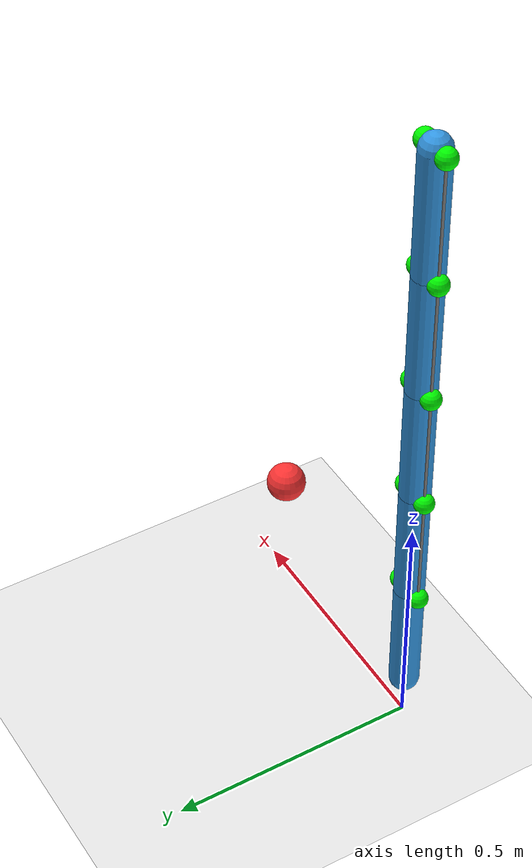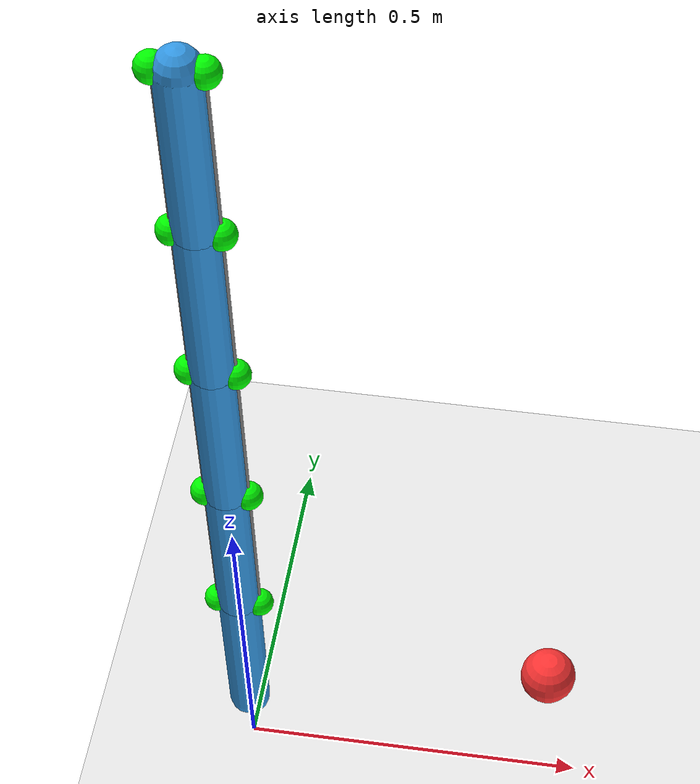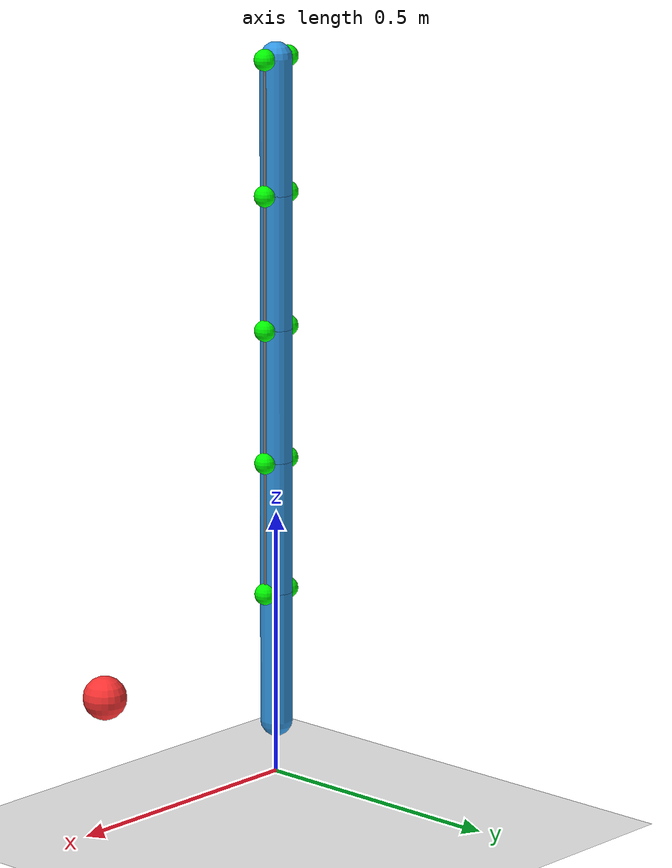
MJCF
<mujoco model="stage7_dual_tendon_with_ball">

    <!--  OPTIONS              -->
    <option timestep="0.002" gravity="0 0 -9.81" integrator="RK4"/>

    <!--  DEFAULTS             -->
    <default>
        <joint
            type="hinge"
            axis="0 1 0"
            damping="0.3"
            limited="true"
            range="-60 60"/>

        <geom
            type="capsule"
            size="0.03"
            density="1000"
            friction="1 0.1 0.1"
            rgba="0.2 0.6 0.9 1"/>

        <site
            size="0.02"
            rgba="0 1 0 1"/>

        <tendon
            stiffness="200"
            damping="5"/>
    </default>

    <!--  WORLD                -->
    <worldbody>

        <!-- Ground -->
        <geom type="plane" size="5 5 0.1" rgba="0.9 0.9 0.9 1"/>

        <!-- TARGET BALL (FIXED) -->
        <body name="target" pos="0.45 0 0.25">
            <geom
                name="target_ball"
                type="sphere"
                size="0.04"
                rgba="1 0.2 0.2 1"
                contype="0"
                conaffinity="0"/>
        </body>

        <!-- ROBOT BASE -->
        <body name="base" pos="0 0 0.1">

            <!-- LINK 1 -->
            <body name="link1" pos="0 0 0">
                <joint name="j1"/>
                <geom fromto="0 0 0  0 0 0.25"/>
                <site name="s1_pos" pos="0.03 0 0.25"/>
                <site name="s1_neg" pos="-0.03 0 0.25"/>

                <!-- LINK 2 -->
                <body name="link2" pos="0 0 0.25">
                    <joint name="j2"/>
                    <geom fromto="0 0 0  0 0 0.25"/>
                    <site name="s2_pos" pos="0.03 0 0.25"/>
                    <site name="s2_neg" pos="-0.03 0 0.25"/>

                    <!-- LINK 3 -->
                    <body name="link3" pos="0 0 0.25">
                        <joint name="j3"/>
                        <geom fromto="0 0 0  0 0 0.25"/>
                        <site name="s3_pos" pos="0.03 0 0.25"/>
                        <site name="s3_neg" pos="-0.03 0 0.25"/>

                        <!-- LINK 4 -->
                        <body name="link4" pos="0 0 0.25">
                            <joint name="j4"/>
                            <geom fromto="0 0 0  0 0 0.25"/>
                            <site name="s4_pos" pos="0.03 0 0.25"/>
                            <site name="s4_neg" pos="-0.03 0 0.25"/>

                            <!-- LINK 5 -->
                            <body name="link5" pos="0 0 0.25">
                                <joint name="j5"/>
                                <geom fromto="0 0 0  0 0 0.25"/>
                                <site name="s5_pos" pos="0.03 0 0.25"/>
                                <site name="s5_neg" pos="-0.03 0 0.25"/>

                                <!-- TIP SITE -->
                                <site
                                    name="tip"
                                    pos="0 0 0.25"
                                    rgba="0 1 0 1"/>
                            </body>

                        </body>
                    </body>
                </body>
            </body>
        </body>
    </worldbody>

    <!--  TENDONS              -->
    <tendon>

        <!-- +X SIDE TENDON -->
        <spatial name="tendon_pos">
            <site site="s1_pos"/>
            <site site="s2_pos"/>
            <site site="s3_pos"/>
            <site site="s4_pos"/>
            <site site="s5_pos"/>
        </spatial>

        <!-- -X SIDE TENDON -->
        <spatial name="tendon_neg">
            <site site="s1_neg"/>
            <site site="s2_neg"/>
            <site site="s3_neg"/>
            <site site="s4_neg"/>
            <site site="s5_neg"/>
        </spatial>

    </tendon>

    <!--  ACTUATORS            -->
    <actuator>

        <!-- Length-controlled tendons -->
        <position
            name="ctrl_pos"
            tendon="tendon_pos"
            kp="50"
            ctrllimited="true"
            ctrlrange="-0.1 0.1"/>

        <position
            name="ctrl_neg"
            tendon="tendon_neg"
            kp="50"
            ctrllimited="true"
            ctrlrange="-0.1 0.1"/>

    </actuator>

</mujoco>
